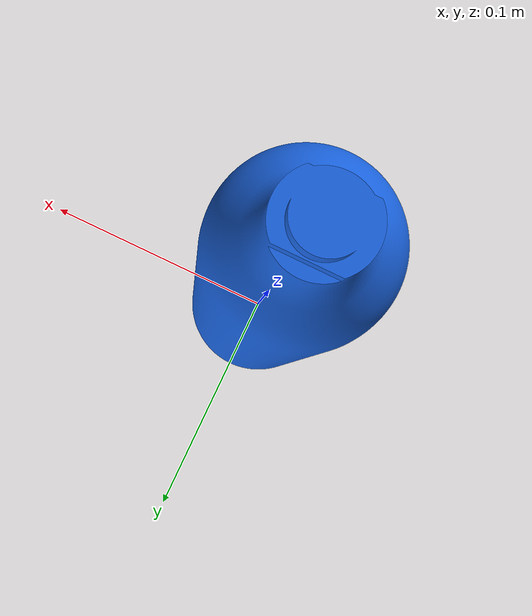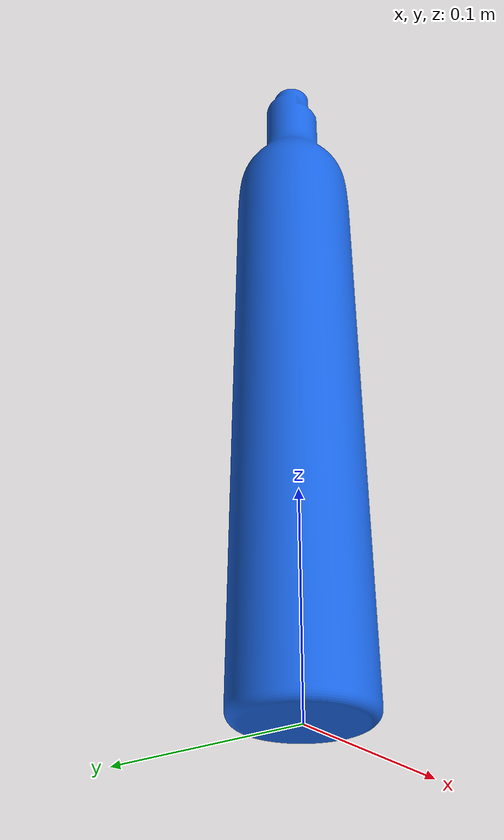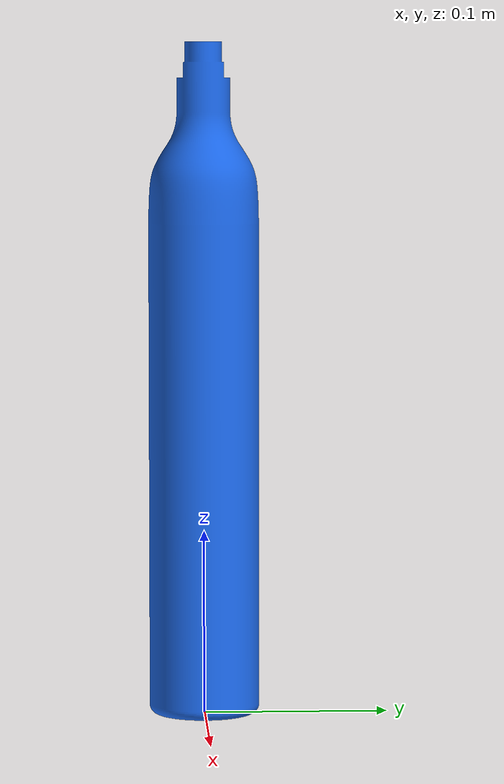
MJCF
<mujoco model="cylinder_mockup_full_length_m">
  <default>
    <default class="visual">
      <geom group="2" type="mesh" contype="0" conaffinity="0"/>
    </default>
    <default class="collision">
      <geom group="3" type="mesh"/>
    </default>
  </default>
  <asset>
    <material name="mtl_cylinder_mockup_full_length_m" specular="0.20000000000000004" shininess="1.0" rgba="0.10196078 0.40000000 0.90196078 1.0"/>
    <mesh file="cylinder_mockup_full_length_m.obj"/>
  </asset>
  <worldbody>
    <body name="cylinder_mockup_full_length_m">
      <geom material="mtl_cylinder_mockup_full_length_m" mesh="cylinder_mockup_full_length_m" class="visual"/>
      <geom mesh="cylinder_mockup_full_length_m" class="collision"/>
    </body>
  </worldbody>
</mujoco>
